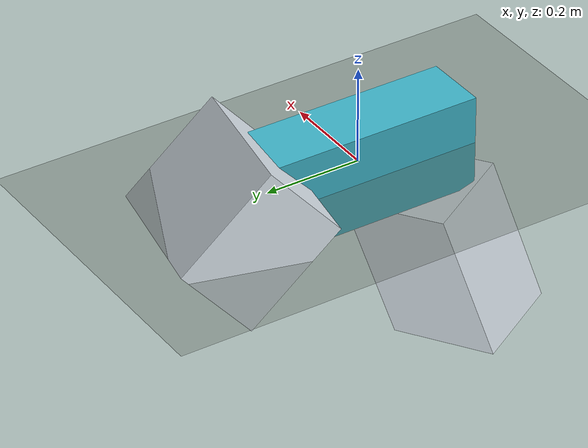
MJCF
<mujoco model="criatura">
  <compiler angle="degree" autolimits="true"/>
  <option timestep="0.002083" gravity="0 0 -9.81" integrator="implicitfast"/>
  <default>
    <geom type="box" density="300.0" rgba="0.85 0.89 0.92 1"/>
    <joint type="hinge"/>
    <motor ctrlrange="-1 1"/>
  </default>
  <worldbody>
    <geom name="suelo" type="plane" size="0 0 1" friction="1 0.005 0.0001" rgba="0.3 0.35 0.3 1"/>
    <body name="p0_n0" pos="0.00000 0.00000 0.00000" quat="1.000000 0.000000 0.000000 0.000000">
      <freejoint name="raiz"/>
      <geom name="g_p0_n0" size="0.06636 0.21980 0.09800" rgba="0.25 0.72 0.8 1"/>
      <body name="p1_n1" pos="-0.01957 0.28977 0.00197" quat="0.746412 0.297241 -0.266383 0.532501">
        <joint name="p1_n1_j0" axis="0.0000 0.0000 1.0000" pos="-0.10991 0 0" range="-28.96 28.96" damping="1.2925"/>
        <geom name="g_p1_n1" size="0.08991 0.18841 0.12337"/>
      </body>
      <body name="p2_n2" pos="0.00838 -0.20326 -0.27851" quat="-0.225583 -0.635284 -0.027340 0.738092">
        <joint name="p2_n2_j0" axis="1.0000 0.0000 0.0000" pos="-0.18998 0 0" range="-22.34 22.34" damping="0.6379"/>
        <joint name="p2_n2_j1" axis="0.0000 0.0000 1.0000" pos="-0.18998 0 0" range="-22.34 22.34" damping="0.6379"/>
        <geom name="g_p2_n2" size="0.16998 0.08838 0.12030"/>
      </body>
    </body>
  </worldbody>
  <actuator>
    <motor name="m_p1_n1_j0" joint="p1_n1_j0" gear="-25.8498"/>
    <motor name="m_p2_n2_j0" joint="p2_n2_j0" gear="12.7587"/>
    <motor name="m_p2_n2_j1" joint="p2_n2_j1" gear="12.7587"/>
  </actuator>
</mujoco>
